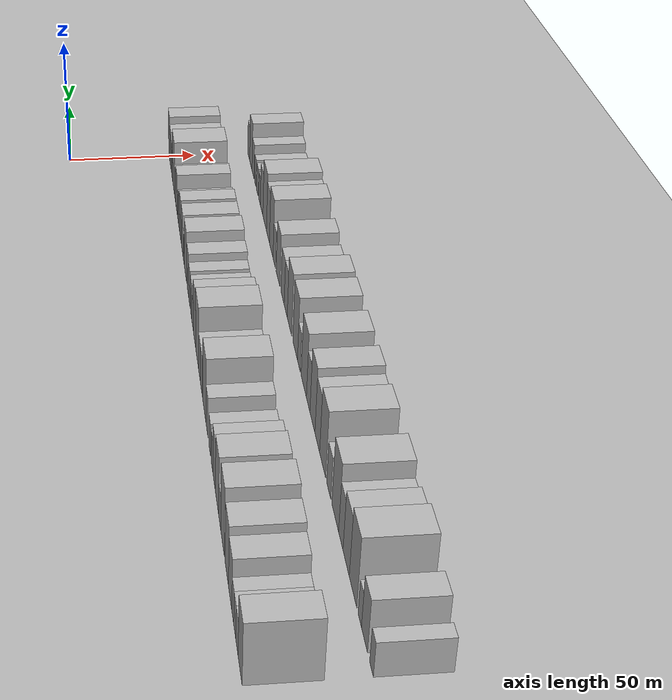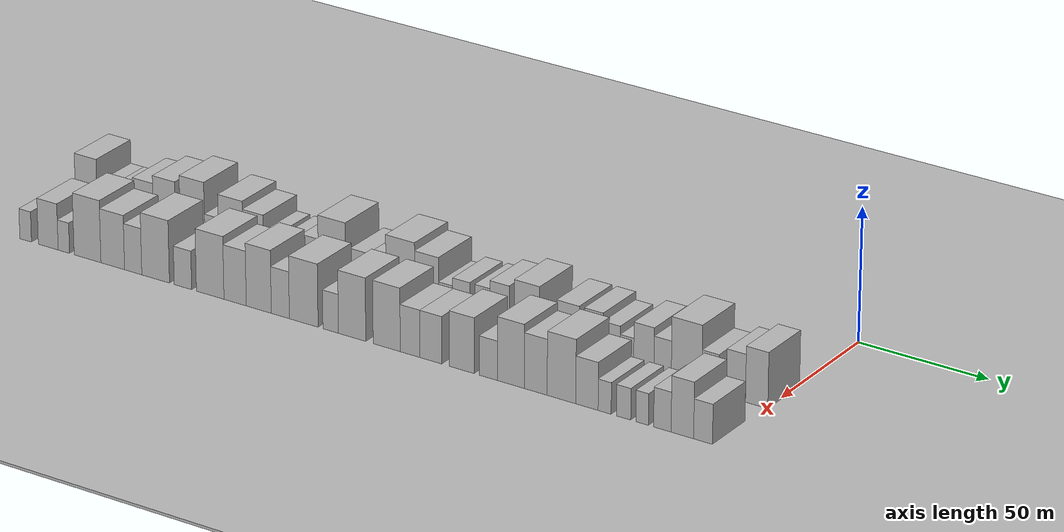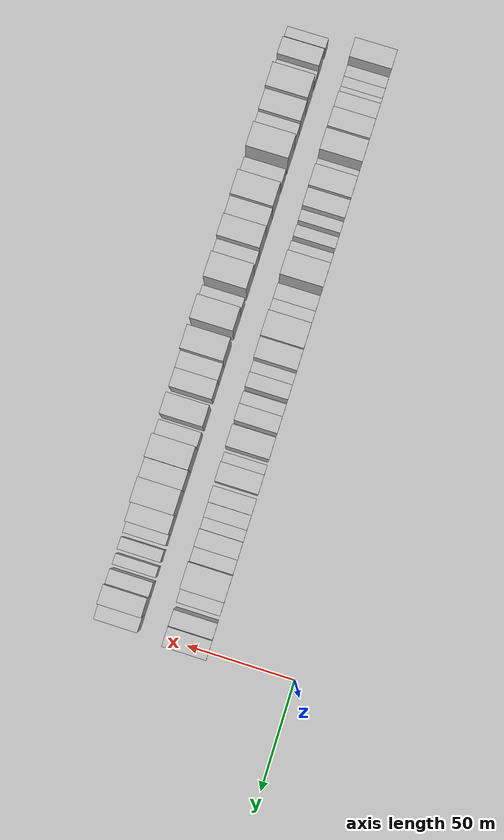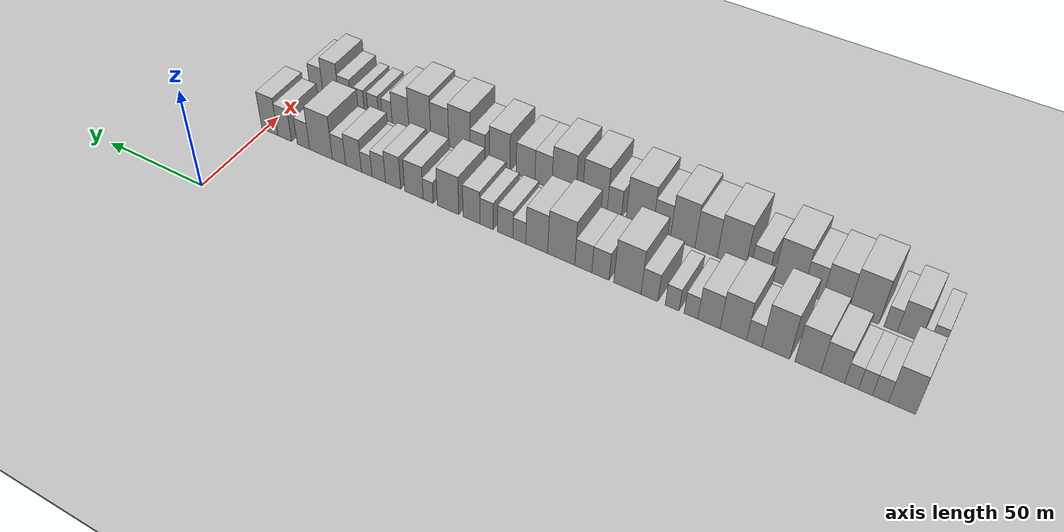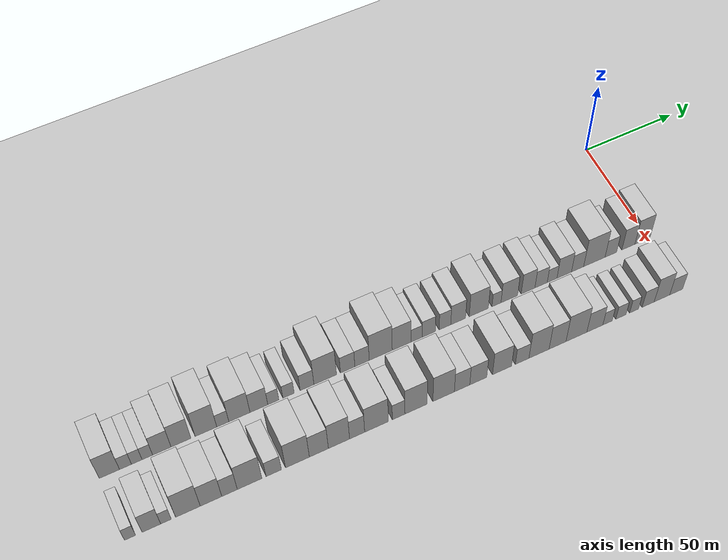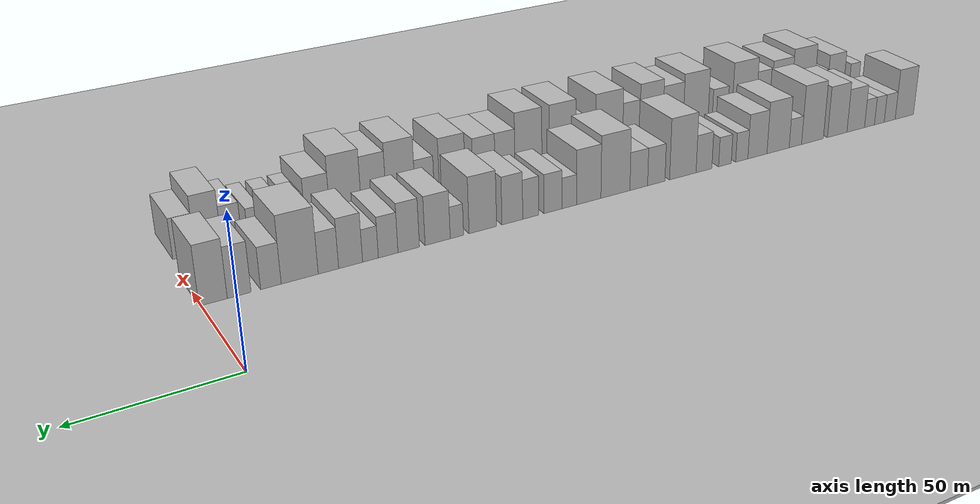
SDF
<sdf version="1.6">
 <world name="default">
  <include><name>ground_plane_1</name><uri>model://HANNAS_ground_plane</uri></include>
  <include>
   <name>ground_plane_2</name>
   <uri>model://HANNAS_ground_plane</uri>
   <pose>100 0 0  0 0 0</pose>
  </include>
  <model name="building_1">
   <static>1</static>
   <pose>50.0000 -279.2305 0 0.000000 0.000000 0.000000</pose>
   <link name="link">
    <pose>0 0 10.50 0 0 0</pose>
    <collision name="collision"><geometry><box><size>20.0000 9.5390 21.0000</size></box></geometry></collision>
    <visual name="visual">
     <cast_shadows>0</cast_shadows>
     <geometry><box><size>20.0000 9.5390 21.0000</size></box></geometry>
     <material>
      <script>
       <uri>model://HANNAS_wall/materials/scripts</uri>
       <uri>model://HANNAS_wall/materials/textures</uri>
       <name>vrc/HANNAS_wall</name>
      </script>
     </material>
    </visual>
   </link>
  </model>
  <model name="building_2">
   <static>1</static>
   <pose>50.0000 -271.6400 0 0.000000 0.000000 0.000000</pose>
   <link name="link">
    <pose>0 0 6.00 0 0 0</pose>
    <collision name="collision"><geometry><box><size>20.0000 5.6421 12.0000</size></box></geometry></collision>
    <visual name="visual">
     <cast_shadows>0</cast_shadows>
     <geometry><box><size>20.0000 5.6421 12.0000</size></box></geometry>
     <material>
      <script>
       <uri>model://HANNAS_wall/materials/scripts</uri>
       <uri>model://HANNAS_wall/materials/textures</uri>
       <name>vrc/HANNAS_wall</name>
      </script>
     </material>
    </visual>
   </link>
  </model>
  <model name="building_3">
   <static>1</static>
   <pose>50.0000 -266.3191 0 0.000000 0.000000 0.000000</pose>
   <link name="link">
    <pose>0 0 6.00 0 0 0</pose>
    <collision name="collision"><geometry><box><size>20.0000 4.9997 12.0000</size></box></geometry></collision>
    <visual name="visual">
     <cast_shadows>0</cast_shadows>
     <geometry><box><size>20.0000 4.9997 12.0000</size></box></geometry>
     <material>
      <script>
       <uri>model://HANNAS_wall/materials/scripts</uri>
       <uri>model://HANNAS_wall/materials/textures</uri>
       <name>vrc/HANNAS_wall</name>
      </script>
     </material>
    </visual>
   </link>
  </model>
  <model name="building_4">
   <static>1</static>
   <pose>50.0000 -261.3050 0 0.000000 0.000000 0.000000</pose>
   <link name="link">
    <pose>0 0 6.00 0 0 0</pose>
    <collision name="collision"><geometry><box><size>20.0000 5.0284 12.0000</size></box></geometry></collision>
    <visual name="visual">
     <cast_shadows>0</cast_shadows>
     <geometry><box><size>20.0000 5.0284 12.0000</size></box></geometry>
     <material>
      <script>
       <uri>model://HANNAS_wall/materials/scripts</uri>
       <uri>model://HANNAS_wall/materials/textures</uri>
       <name>vrc/HANNAS_wall</name>
      </script>
     </material>
    </visual>
   </link>
  </model>
  <model name="building_5">
   <static>1</static>
   <pose>50.0000 -254.3919 0 0.000000 0.000000 0.000000</pose>
   <link name="link">
    <pose>0 0 9.00 0 0 0</pose>
    <collision name="collision"><geometry><box><size>20.0000 8.7978 18.0000</size></box></geometry></collision>
    <visual name="visual">
     <cast_shadows>0</cast_shadows>
     <geometry><box><size>20.0000 8.7978 18.0000</size></box></geometry>
     <material>
      <script>
       <uri>model://HANNAS_wall/materials/scripts</uri>
       <uri>model://HANNAS_wall/materials/textures</uri>
       <name>vrc/HANNAS_wall</name>
      </script>
     </material>
    </visual>
   </link>
  </model>
  <model name="building_6">
   <static>1</static>
   <pose>50.0000 -245.1955 0 0.000000 0.000000 0.000000</pose>
   <link name="link">
    <pose>0 0 10.50 0 0 0</pose>
    <collision name="collision"><geometry><box><size>20.0000 9.5949 21.0000</size></box></geometry></collision>
    <visual name="visual">
     <cast_shadows>0</cast_shadows>
     <geometry><box><size>20.0000 9.5949 21.0000</size></box></geometry>
     <material>
      <script>
       <uri>model://HANNAS_wall/materials/scripts</uri>
       <uri>model://HANNAS_wall/materials/textures</uri>
       <name>vrc/HANNAS_wall</name>
      </script>
     </material>
    </visual>
   </link>
  </model>
  <model name="building_7">
   <static>1</static>
   <pose>50.0000 -233.1401 0 0.000000 0.000000 0.000000</pose>
   <link name="link">
    <pose>0 0 12.00 0 0 0</pose>
    <collision name="collision"><geometry><box><size>20.0000 10.5159 24.0000</size></box></geometry></collision>
    <visual name="visual">
     <cast_shadows>0</cast_shadows>
     <geometry><box><size>20.0000 10.5159 24.0000</size></box></geometry>
     <material>
      <script>
       <uri>model://HANNAS_wall/materials/scripts</uri>
       <uri>model://HANNAS_wall/materials/textures</uri>
       <name>vrc/HANNAS_wall</name>
      </script>
     </material>
    </visual>
   </link>
  </model>
  <model name="building_8">
   <static>1</static>
   <pose>50.0000 -224.9332 0 0.000000 0.000000 0.000000</pose>
   <link name="link">
    <pose>0 0 6.00 0 0 0</pose>
    <collision name="collision"><geometry><box><size>20.0000 5.8978 12.0000</size></box></geometry></collision>
    <visual name="visual">
     <cast_shadows>0</cast_shadows>
     <geometry><box><size>20.0000 5.8978 12.0000</size></box></geometry>
     <material>
      <script>
       <uri>model://HANNAS_wall/materials/scripts</uri>
       <uri>model://HANNAS_wall/materials/textures</uri>
       <name>vrc/HANNAS_wall</name>
      </script>
     </material>
    </visual>
   </link>
  </model>
  <model name="building_9">
   <static>1</static>
   <pose>50.0000 -216.7880 0 0.000000 0.000000 0.000000</pose>
   <link name="link">
    <pose>0 0 10.50 0 0 0</pose>
    <collision name="collision"><geometry><box><size>20.0000 10.3926 21.0000</size></box></geometry></collision>
    <visual name="visual">
     <cast_shadows>0</cast_shadows>
     <geometry><box><size>20.0000 10.3926 21.0000</size></box></geometry>
     <material>
      <script>
       <uri>model://HANNAS_wall/materials/scripts</uri>
       <uri>model://HANNAS_wall/materials/textures</uri>
       <name>vrc/HANNAS_wall</name>
      </script>
     </material>
    </visual>
   </link>
  </model>
  <model name="building_10">
   <static>1</static>
   <pose>50.0000 -207.1930 0 0.000000 0.000000 0.000000</pose>
   <link name="link">
    <pose>0 0 9.00 0 0 0</pose>
    <collision name="collision"><geometry><box><size>20.0000 8.7975 18.0000</size></box></geometry></collision>
    <visual name="visual">
     <cast_shadows>0</cast_shadows>
     <geometry><box><size>20.0000 8.7975 18.0000</size></box></geometry>
     <material>
      <script>
       <uri>model://HANNAS_wall/materials/scripts</uri>
       <uri>model://HANNAS_wall/materials/textures</uri>
       <name>vrc/HANNAS_wall</name>
      </script>
     </material>
    </visual>
   </link>
  </model>
  <model name="building_11">
   <static>1</static>
   <pose>50.0000 -200.0392 0 0.000000 0.000000 0.000000</pose>
   <link name="link">
    <pose>0 0 6.00 0 0 0</pose>
    <collision name="collision"><geometry><box><size>20.0000 5.5100 12.0000</size></box></geometry></collision>
    <visual name="visual">
     <cast_shadows>0</cast_shadows>
     <geometry><box><size>20.0000 5.5100 12.0000</size></box></geometry>
     <material>
      <script>
       <uri>model://HANNAS_wall/materials/scripts</uri>
       <uri>model://HANNAS_wall/materials/textures</uri>
       <name>vrc/HANNAS_wall</name>
      </script>
     </material>
    </visual>
   </link>
  </model>
  <model name="building_12">
   <static>1</static>
   <pose>50.0000 -192.4610 0 0.000000 0.000000 0.000000</pose>
   <link name="link">
    <pose>0 0 6.00 0 0 0</pose>
    <collision name="collision"><geometry><box><size>20.0000 5.6464 12.0000</size></box></geometry></collision>
    <visual name="visual">
     <cast_shadows>0</cast_shadows>
     <geometry><box><size>20.0000 5.6464 12.0000</size></box></geometry>
     <material>
      <script>
       <uri>model://HANNAS_wall/materials/scripts</uri>
       <uri>model://HANNAS_wall/materials/textures</uri>
       <name>vrc/HANNAS_wall</name>
      </script>
     </material>
    </visual>
   </link>
  </model>
  <model name="building_13">
   <static>1</static>
   <pose>50.0000 -183.1649 0 0.000000 0.000000 0.000000</pose>
   <link name="link">
    <pose>0 0 7.50 0 0 0</pose>
    <collision name="collision"><geometry><box><size>20.0000 6.9459 15.0000</size></box></geometry></collision>
    <visual name="visual">
     <cast_shadows>0</cast_shadows>
     <geometry><box><size>20.0000 6.9459 15.0000</size></box></geometry>
     <material>
      <script>
       <uri>model://HANNAS_wall/materials/scripts</uri>
       <uri>model://HANNAS_wall/materials/textures</uri>
       <name>vrc/HANNAS_wall</name>
      </script>
     </material>
    </visual>
   </link>
  </model>
  <model name="building_14">
   <static>1</static>
   <pose>50.0000 -173.9697 0 0.000000 0.000000 0.000000</pose>
   <link name="link">
    <pose>0 0 12.00 0 0 0</pose>
    <collision name="collision"><geometry><box><size>20.0000 11.4444 24.0000</size></box></geometry></collision>
    <visual name="visual">
     <cast_shadows>0</cast_shadows>
     <geometry><box><size>20.0000 11.4444 24.0000</size></box></geometry>
     <material>
      <script>
       <uri>model://HANNAS_wall/materials/scripts</uri>
       <uri>model://HANNAS_wall/materials/textures</uri>
       <name>vrc/HANNAS_wall</name>
      </script>
     </material>
    </visual>
   </link>
  </model>
  <model name="building_15">
   <static>1</static>
   <pose>50.0000 -162.5732 0 0.000000 0.000000 0.000000</pose>
   <link name="link">
    <pose>0 0 7.50 0 0 0</pose>
    <collision name="collision"><geometry><box><size>20.0000 7.3485 15.0000</size></box></geometry></collision>
    <visual name="visual">
     <cast_shadows>0</cast_shadows>
     <geometry><box><size>20.0000 7.3485 15.0000</size></box></geometry>
     <material>
      <script>
       <uri>model://HANNAS_wall/materials/scripts</uri>
       <uri>model://HANNAS_wall/materials/textures</uri>
       <name>vrc/HANNAS_wall</name>
      </script>
     </material>
    </visual>
   </link>
  </model>
  <model name="building_16">
   <static>1</static>
   <pose>50.0000 -155.2108 0 0.000000 0.000000 0.000000</pose>
   <link name="link">
    <pose>0 0 7.50 0 0 0</pose>
    <collision name="collision"><geometry><box><size>20.0000 7.3764 15.0000</size></box></geometry></collision>
    <visual name="visual">
     <cast_shadows>0</cast_shadows>
     <geometry><box><size>20.0000 7.3764 15.0000</size></box></geometry>
     <material>
      <script>
       <uri>model://HANNAS_wall/materials/scripts</uri>
       <uri>model://HANNAS_wall/materials/textures</uri>
       <name>vrc/HANNAS_wall</name>
      </script>
     </material>
    </visual>
   </link>
  </model>
  <model name="building_17">
   <static>1</static>
   <pose>50.0000 -145.5804 0 0.000000 0.000000 0.000000</pose>
   <link name="link">
    <pose>0 0 12.00 0 0 0</pose>
    <collision name="collision"><geometry><box><size>20.0000 11.8843 24.0000</size></box></geometry></collision>
    <visual name="visual">
     <cast_shadows>0</cast_shadows>
     <geometry><box><size>20.0000 11.8843 24.0000</size></box></geometry>
     <material>
      <script>
       <uri>model://HANNAS_wall/materials/scripts</uri>
       <uri>model://HANNAS_wall/materials/textures</uri>
       <name>vrc/HANNAS_wall</name>
      </script>
     </material>
    </visual>
   </link>
  </model>
  <model name="building_18">
   <static>1</static>
   <pose>50.0000 -134.7544 0 0.000000 0.000000 0.000000</pose>
   <link name="link">
    <pose>0 0 10.50 0 0 0</pose>
    <collision name="collision"><geometry><box><size>20.0000 9.7678 21.0000</size></box></geometry></collision>
    <visual name="visual">
     <cast_shadows>0</cast_shadows>
     <geometry><box><size>20.0000 9.7678 21.0000</size></box></geometry>
     <material>
      <script>
       <uri>model://HANNAS_wall/materials/scripts</uri>
       <uri>model://HANNAS_wall/materials/textures</uri>
       <name>vrc/HANNAS_wall</name>
      </script>
     </material>
    </visual>
   </link>
  </model>
  <model name="building_19">
   <static>1</static>
   <pose>50.0000 -126.9675 0 0.000000 0.000000 0.000000</pose>
   <link name="link">
    <pose>0 0 6.00 0 0 0</pose>
    <collision name="collision"><geometry><box><size>20.0000 5.8060 12.0000</size></box></geometry></collision>
    <visual name="visual">
     <cast_shadows>0</cast_shadows>
     <geometry><box><size>20.0000 5.8060 12.0000</size></box></geometry>
     <material>
      <script>
       <uri>model://HANNAS_wall/materials/scripts</uri>
       <uri>model://HANNAS_wall/materials/textures</uri>
       <name>vrc/HANNAS_wall</name>
      </script>
     </material>
    </visual>
   </link>
  </model>
  <model name="building_20">
   <static>1</static>
   <pose>50.0000 -120.5750 0 0.000000 0.000000 0.000000</pose>
   <link name="link">
    <pose>0 0 7.50 0 0 0</pose>
    <collision name="collision"><geometry><box><size>20.0000 6.9789 15.0000</size></box></geometry></collision>
    <visual name="visual">
     <cast_shadows>0</cast_shadows>
     <geometry><box><size>20.0000 6.9789 15.0000</size></box></geometry>
     <material>
      <script>
       <uri>model://HANNAS_wall/materials/scripts</uri>
       <uri>model://HANNAS_wall/materials/textures</uri>
       <name>vrc/HANNAS_wall</name>
      </script>
     </material>
    </visual>
   </link>
  </model>
  <model name="building_21">
   <static>1</static>
   <pose>50.0000 -112.0053 0 0.000000 0.000000 0.000000</pose>
   <link name="link">
    <pose>0 0 7.50 0 0 0</pose>
    <collision name="collision"><geometry><box><size>20.0000 6.1606 15.0000</size></box></geometry></collision>
    <visual name="visual">
     <cast_shadows>0</cast_shadows>
     <geometry><box><size>20.0000 6.1606 15.0000</size></box></geometry>
     <material>
      <script>
       <uri>model://HANNAS_wall/materials/scripts</uri>
       <uri>model://HANNAS_wall/materials/textures</uri>
       <name>vrc/HANNAS_wall</name>
      </script>
     </material>
    </visual>
   </link>
  </model>
  <model name="building_22">
   <static>1</static>
   <pose>50.0000 -104.9959 0 0.000000 0.000000 0.000000</pose>
   <link name="link">
    <pose>0 0 9.00 0 0 0</pose>
    <collision name="collision"><geometry><box><size>20.0000 7.8580 18.0000</size></box></geometry></collision>
    <visual name="visual">
     <cast_shadows>0</cast_shadows>
     <geometry><box><size>20.0000 7.8580 18.0000</size></box></geometry>
     <material>
      <script>
       <uri>model://HANNAS_wall/materials/scripts</uri>
       <uri>model://HANNAS_wall/materials/textures</uri>
       <name>vrc/HANNAS_wall</name>
      </script>
     </material>
    </visual>
   </link>
  </model>
  <model name="building_23">
   <static>1</static>
   <pose>50.0000 -93.9681 0 0.000000 0.000000 0.000000</pose>
   <link name="link">
    <pose>0 0 10.50 0 0 0</pose>
    <collision name="collision"><geometry><box><size>20.0000 10.1976 21.0000</size></box></geometry></collision>
    <visual name="visual">
     <cast_shadows>0</cast_shadows>
     <geometry><box><size>20.0000 10.1976 21.0000</size></box></geometry>
     <material>
      <script>
       <uri>model://HANNAS_wall/materials/scripts</uri>
       <uri>model://HANNAS_wall/materials/textures</uri>
       <name>vrc/HANNAS_wall</name>
      </script>
     </material>
    </visual>
   </link>
  </model>
  <model name="building_24">
   <static>1</static>
   <pose>50.0000 -84.4433 0 0.000000 0.000000 0.000000</pose>
   <link name="link">
    <pose>0 0 6.00 0 0 0</pose>
    <collision name="collision"><geometry><box><size>20.0000 4.8520 12.0000</size></box></geometry></collision>
    <visual name="visual">
     <cast_shadows>0</cast_shadows>
     <geometry><box><size>20.0000 4.8520 12.0000</size></box></geometry>
     <material>
      <script>
       <uri>model://HANNAS_wall/materials/scripts</uri>
       <uri>model://HANNAS_wall/materials/textures</uri>
       <name>vrc/HANNAS_wall</name>
      </script>
     </material>
    </visual>
   </link>
  </model>
  <model name="building_25">
   <static>1</static>
   <pose>50.0000 -77.5244 0 0.000000 0.000000 0.000000</pose>
   <link name="link">
    <pose>0 0 9.00 0 0 0</pose>
    <collision name="collision"><geometry><box><size>20.0000 8.9857 18.0000</size></box></geometry></collision>
    <visual name="visual">
     <cast_shadows>0</cast_shadows>
     <geometry><box><size>20.0000 8.9857 18.0000</size></box></geometry>
     <material>
      <script>
       <uri>model://HANNAS_wall/materials/scripts</uri>
       <uri>model://HANNAS_wall/materials/textures</uri>
       <name>vrc/HANNAS_wall</name>
      </script>
     </material>
    </visual>
   </link>
  </model>
  <model name="building_26">
   <static>1</static>
   <pose>50.0000 -67.2787 0 0.000000 0.000000 0.000000</pose>
   <link name="link">
    <pose>0 0 9.00 0 0 0</pose>
    <collision name="collision"><geometry><box><size>20.0000 7.5058 18.0000</size></box></geometry></collision>
    <visual name="visual">
     <cast_shadows>0</cast_shadows>
     <geometry><box><size>20.0000 7.5058 18.0000</size></box></geometry>
     <material>
      <script>
       <uri>model://HANNAS_wall/materials/scripts</uri>
       <uri>model://HANNAS_wall/materials/textures</uri>
       <name>vrc/HANNAS_wall</name>
      </script>
     </material>
    </visual>
   </link>
  </model>
  <model name="building_27">
   <static>1</static>
   <pose>50.0000 -60.1439 0 0.000000 0.000000 0.000000</pose>
   <link name="link">
    <pose>0 0 7.50 0 0 0</pose>
    <collision name="collision"><geometry><box><size>20.0000 6.7638 15.0000</size></box></geometry></collision>
    <visual name="visual">
     <cast_shadows>0</cast_shadows>
     <geometry><box><size>20.0000 6.7638 15.0000</size></box></geometry>
     <material>
      <script>
       <uri>model://HANNAS_wall/materials/scripts</uri>
       <uri>model://HANNAS_wall/materials/textures</uri>
       <name>vrc/HANNAS_wall</name>
      </script>
     </material>
    </visual>
   </link>
  </model>
  <model name="building_28">
   <static>1</static>
   <pose>50.0000 -54.0815 0 0.000000 0.000000 0.000000</pose>
   <link name="link">
    <pose>0 0 6.00 0 0 0</pose>
    <collision name="collision"><geometry><box><size>20.0000 5.3612 12.0000</size></box></geometry></collision>
    <visual name="visual">
     <cast_shadows>0</cast_shadows>
     <geometry><box><size>20.0000 5.3612 12.0000</size></box></geometry>
     <material>
      <script>
       <uri>model://HANNAS_wall/materials/scripts</uri>
       <uri>model://HANNAS_wall/materials/textures</uri>
       <name>vrc/HANNAS_wall</name>
      </script>
     </material>
    </visual>
   </link>
  </model>
  <model name="building_29">
   <static>1</static>
   <pose>50.0000 -47.3801 0 0.000000 0.000000 0.000000</pose>
   <link name="link">
    <pose>0 0 9.00 0 0 0</pose>
    <collision name="collision"><geometry><box><size>20.0000 8.0416 18.0000</size></box></geometry></collision>
    <visual name="visual">
     <cast_shadows>0</cast_shadows>
     <geometry><box><size>20.0000 8.0416 18.0000</size></box></geometry>
     <material>
      <script>
       <uri>model://HANNAS_wall/materials/scripts</uri>
       <uri>model://HANNAS_wall/materials/textures</uri>
       <name>vrc/HANNAS_wall</name>
      </script>
     </material>
    </visual>
   </link>
  </model>
  <model name="building_30">
   <static>1</static>
   <pose>50.0000 -39.9776 0 0.000000 0.000000 0.000000</pose>
   <link name="link">
    <pose>0 0 7.50 0 0 0</pose>
    <collision name="collision"><geometry><box><size>20.0000 6.7633 15.0000</size></box></geometry></collision>
    <visual name="visual">
     <cast_shadows>0</cast_shadows>
     <geometry><box><size>20.0000 6.7633 15.0000</size></box></geometry>
     <material>
      <script>
       <uri>model://HANNAS_wall/materials/scripts</uri>
       <uri>model://HANNAS_wall/materials/textures</uri>
       <name>vrc/HANNAS_wall</name>
      </script>
     </material>
    </visual>
   </link>
  </model>
  <model name="building_31">
   <static>1</static>
   <pose>50.0000 -30.6100 0 0.000000 0.000000 0.000000</pose>
   <link name="link">
    <pose>0 0 12.00 0 0 0</pose>
    <collision name="collision"><geometry><box><size>20.0000 11.9720 24.0000</size></box></geometry></collision>
    <visual name="visual">
     <cast_shadows>0</cast_shadows>
     <geometry><box><size>20.0000 11.9720 24.0000</size></box></geometry>
     <material>
      <script>
       <uri>model://HANNAS_wall/materials/scripts</uri>
       <uri>model://HANNAS_wall/materials/textures</uri>
       <name>vrc/HANNAS_wall</name>
      </script>
     </material>
    </visual>
   </link>
  </model>
  <model name="building_32">
   <static>1</static>
   <pose>50.0000 -21.3559 0 0.000000 0.000000 0.000000</pose>
   <link name="link">
    <pose>0 0 7.50 0 0 0</pose>
    <collision name="collision"><geometry><box><size>20.0000 6.5360 15.0000</size></box></geometry></collision>
    <visual name="visual">
     <cast_shadows>0</cast_shadows>
     <geometry><box><size>20.0000 6.5360 15.0000</size></box></geometry>
     <material>
      <script>
       <uri>model://HANNAS_wall/materials/scripts</uri>
       <uri>model://HANNAS_wall/materials/textures</uri>
       <name>vrc/HANNAS_wall</name>
      </script>
     </material>
    </visual>
   </link>
  </model>
  <model name="building_33">
   <static>1</static>
   <pose>50.0000 -11.3992 0 0.000000 0.000000 0.000000</pose>
   <link name="link">
    <pose>0 0 9.00 0 0 0</pose>
    <collision name="collision"><geometry><box><size>20.0000 7.3775 18.0000</size></box></geometry></collision>
    <visual name="visual">
     <cast_shadows>0</cast_shadows>
     <geometry><box><size>20.0000 7.3775 18.0000</size></box></geometry>
     <material>
      <script>
       <uri>model://HANNAS_wall/materials/scripts</uri>
       <uri>model://HANNAS_wall/materials/textures</uri>
       <name>vrc/HANNAS_wall</name>
      </script>
     </material>
    </visual>
   </link>
  </model>
  <model name="building_34">
   <static>1</static>
   <pose>50.0000 -3.3811 0 0.000000 0.000000 0.000000</pose>
   <link name="link">
    <pose>0 0 10.50 0 0 0</pose>
    <collision name="collision"><geometry><box><size>20.0000 8.6587 21.0000</size></box></geometry></collision>
    <visual name="visual">
     <cast_shadows>0</cast_shadows>
     <geometry><box><size>20.0000 8.6587 21.0000</size></box></geometry>
     <material>
      <script>
       <uri>model://HANNAS_wall/materials/scripts</uri>
       <uri>model://HANNAS_wall/materials/textures</uri>
       <name>vrc/HANNAS_wall</name>
      </script>
     </material>
    </visual>
   </link>
  </model>
  <model name="building_68">
   <static>1</static>
   <pose>82.0000 -281.4630 0 0.000000 0.000000 0.000000</pose>
   <link name="link">
    <pose>0 0 6.00 0 0 0</pose>
    <collision name="collision"><geometry><box><size>20.0000 5.0740 12.0000</size></box></geometry></collision>
    <visual name="visual">
     <cast_shadows>0</cast_shadows>
     <geometry><box><size>20.0000 5.0740 12.0000</size></box></geometry>
     <material>
      <script>
       <uri>model://HANNAS_wall/materials/scripts</uri>
       <uri>model://HANNAS_wall/materials/textures</uri>
       <name>vrc/HANNAS_wall</name>
      </script>
     </material>
    </visual>
   </link>
  </model>
  <model name="building_69">
   <static>1</static>
   <pose>82.0000 -271.6115 0 0.000000 0.000000 0.000000</pose>
   <link name="link">
    <pose>0 0 9.00 0 0 0</pose>
    <collision name="collision"><geometry><box><size>20.0000 8.6290 18.0000</size></box></geometry></collision>
    <visual name="visual">
     <cast_shadows>0</cast_shadows>
     <geometry><box><size>20.0000 8.6290 18.0000</size></box></geometry>
     <material>
      <script>
       <uri>model://HANNAS_wall/materials/scripts</uri>
       <uri>model://HANNAS_wall/materials/textures</uri>
       <name>vrc/HANNAS_wall</name>
      </script>
     </material>
    </visual>
   </link>
  </model>
  <model name="building_70">
   <static>1</static>
   <pose>82.0000 -264.8291 0 0.000000 0.000000 0.000000</pose>
   <link name="link">
    <pose>0 0 6.00 0 0 0</pose>
    <collision name="collision"><geometry><box><size>20.0000 4.9356 12.0000</size></box></geometry></collision>
    <visual name="visual">
     <cast_shadows>0</cast_shadows>
     <geometry><box><size>20.0000 4.9356 12.0000</size></box></geometry>
     <material>
      <script>
       <uri>model://HANNAS_wall/materials/scripts</uri>
       <uri>model://HANNAS_wall/materials/textures</uri>
       <name>vrc/HANNAS_wall</name>
      </script>
     </material>
    </visual>
   </link>
  </model>
  <model name="building_71">
   <static>1</static>
   <pose>82.0000 -254.5737 0 0.000000 0.000000 0.000000</pose>
   <link name="link">
    <pose>0 0 12.00 0 0 0</pose>
    <collision name="collision"><geometry><box><size>20.0000 11.5752 24.0000</size></box></geometry></collision>
    <visual name="visual">
     <cast_shadows>0</cast_shadows>
     <geometry><box><size>20.0000 11.5752 24.0000</size></box></geometry>
     <material>
      <script>
       <uri>model://HANNAS_wall/materials/scripts</uri>
       <uri>model://HANNAS_wall/materials/textures</uri>
       <name>vrc/HANNAS_wall</name>
      </script>
     </material>
    </visual>
   </link>
  </model>
  <model name="building_72">
   <static>1</static>
   <pose>82.0000 -243.7011 0 0.000000 0.000000 0.000000</pose>
   <link name="link">
    <pose>0 0 10.50 0 0 0</pose>
    <collision name="collision"><geometry><box><size>20.0000 10.1700 21.0000</size></box></geometry></collision>
    <visual name="visual">
     <cast_shadows>0</cast_shadows>
     <geometry><box><size>20.0000 10.1700 21.0000</size></box></geometry>
     <material>
      <script>
       <uri>model://HANNAS_wall/materials/scripts</uri>
       <uri>model://HANNAS_wall/materials/textures</uri>
       <name>vrc/HANNAS_wall</name>
      </script>
     </material>
    </visual>
   </link>
  </model>
  <model name="building_73">
   <static>1</static>
   <pose>82.0000 -234.9308 0 0.000000 0.000000 0.000000</pose>
   <link name="link">
    <pose>0 0 9.00 0 0 0</pose>
    <collision name="collision"><geometry><box><size>20.0000 7.3707 18.0000</size></box></geometry></collision>
    <visual name="visual">
     <cast_shadows>0</cast_shadows>
     <geometry><box><size>20.0000 7.3707 18.0000</size></box></geometry>
     <material>
      <script>
       <uri>model://HANNAS_wall/materials/scripts</uri>
       <uri>model://HANNAS_wall/materials/textures</uri>
       <name>vrc/HANNAS_wall</name>
      </script>
     </material>
    </visual>
   </link>
  </model>
  <model name="building_74">
   <static>1</static>
   <pose>82.0000 -225.3502 0 0.000000 0.000000 0.000000</pose>
   <link name="link">
    <pose>0 0 12.00 0 0 0</pose>
    <collision name="collision"><geometry><box><size>20.0000 11.7905 24.0000</size></box></geometry></collision>
    <visual name="visual">
     <cast_shadows>0</cast_shadows>
     <geometry><box><size>20.0000 11.7905 24.0000</size></box></geometry>
     <material>
      <script>
       <uri>model://HANNAS_wall/materials/scripts</uri>
       <uri>model://HANNAS_wall/materials/textures</uri>
       <name>vrc/HANNAS_wall</name>
      </script>
     </material>
    </visual>
   </link>
  </model>
  <model name="building_75">
   <static>1</static>
   <pose>82.0000 -213.7511 0 0.000000 0.000000 0.000000</pose>
   <link name="link">
    <pose>0 0 7.50 0 0 0</pose>
    <collision name="collision"><geometry><box><size>20.0000 7.4077 15.0000</size></box></geometry></collision>
    <visual name="visual">
     <cast_shadows>0</cast_shadows>
     <geometry><box><size>20.0000 7.4077 15.0000</size></box></geometry>
     <material>
      <script>
       <uri>model://HANNAS_wall/materials/scripts</uri>
       <uri>model://HANNAS_wall/materials/textures</uri>
       <name>vrc/HANNAS_wall</name>
      </script>
     </material>
    </visual>
   </link>
  </model>
  <model name="building_76">
   <static>1</static>
   <pose>82.0000 -202.2282 0 0.000000 0.000000 0.000000</pose>
   <link name="link">
    <pose>0 0 12.00 0 0 0</pose>
    <collision name="collision"><geometry><box><size>20.0000 11.6380 24.0000</size></box></geometry></collision>
    <visual name="visual">
     <cast_shadows>0</cast_shadows>
     <geometry><box><size>20.0000 11.6380 24.0000</size></box></geometry>
     <material>
      <script>
       <uri>model://HANNAS_wall/materials/scripts</uri>
       <uri>model://HANNAS_wall/materials/textures</uri>
       <name>vrc/HANNAS_wall</name>
      </script>
     </material>
    </visual>
   </link>
  </model>
  <model name="building_77">
   <static>1</static>
   <pose>82.0000 -191.7383 0 0.000000 0.000000 0.000000</pose>
   <link name="link">
    <pose>0 0 10.50 0 0 0</pose>
    <collision name="collision"><geometry><box><size>20.0000 9.3420 21.0000</size></box></geometry></collision>
    <visual name="visual">
     <cast_shadows>0</cast_shadows>
     <geometry><box><size>20.0000 9.3420 21.0000</size></box></geometry>
     <material>
      <script>
       <uri>model://HANNAS_wall/materials/scripts</uri>
       <uri>model://HANNAS_wall/materials/textures</uri>
       <name>vrc/HANNAS_wall</name>
      </script>
     </material>
    </visual>
   </link>
  </model>
  <model name="building_78">
   <static>1</static>
   <pose>82.0000 -181.8411 0 0.000000 0.000000 0.000000</pose>
   <link name="link">
    <pose>0 0 12.00 0 0 0</pose>
    <collision name="collision"><geometry><box><size>20.0000 10.4523 24.0000</size></box></geometry></collision>
    <visual name="visual">
     <cast_shadows>0</cast_shadows>
     <geometry><box><size>20.0000 10.4523 24.0000</size></box></geometry>
     <material>
      <script>
       <uri>model://HANNAS_wall/materials/scripts</uri>
       <uri>model://HANNAS_wall/materials/textures</uri>
       <name>vrc/HANNAS_wall</name>
      </script>
     </material>
    </visual>
   </link>
  </model>
  <model name="building_79">
   <static>1</static>
   <pose>82.0000 -172.8551 0 0.000000 0.000000 0.000000</pose>
   <link name="link">
    <pose>0 0 9.00 0 0 0</pose>
    <collision name="collision"><geometry><box><size>20.0000 7.5198 18.0000</size></box></geometry></collision>
    <visual name="visual">
     <cast_shadows>0</cast_shadows>
     <geometry><box><size>20.0000 7.5198 18.0000</size></box></geometry>
     <material>
      <script>
       <uri>model://HANNAS_wall/materials/scripts</uri>
       <uri>model://HANNAS_wall/materials/textures</uri>
       <name>vrc/HANNAS_wall</name>
      </script>
     </material>
    </visual>
   </link>
  </model>
  <model name="building_80">
   <static>1</static>
   <pose>82.0000 -163.1510 0 0.000000 0.000000 0.000000</pose>
   <link name="link">
    <pose>0 0 12.00 0 0 0</pose>
    <collision name="collision"><geometry><box><size>20.0000 11.8885 24.0000</size></box></geometry></collision>
    <visual name="visual">
     <cast_shadows>0</cast_shadows>
     <geometry><box><size>20.0000 11.8885 24.0000</size></box></geometry>
     <material>
      <script>
       <uri>model://HANNAS_wall/materials/scripts</uri>
       <uri>model://HANNAS_wall/materials/textures</uri>
       <name>vrc/HANNAS_wall</name>
      </script>
     </material>
    </visual>
   </link>
  </model>
  <model name="building_81">
   <static>1</static>
   <pose>82.0000 -152.0168 0 0.000000 0.000000 0.000000</pose>
   <link name="link">
    <pose>0 0 7.50 0 0 0</pose>
    <collision name="collision"><geometry><box><size>20.0000 6.3798 15.0000</size></box></geometry></collision>
    <visual name="visual">
     <cast_shadows>0</cast_shadows>
     <geometry><box><size>20.0000 6.3798 15.0000</size></box></geometry>
     <material>
      <script>
       <uri>model://HANNAS_wall/materials/scripts</uri>
       <uri>model://HANNAS_wall/materials/textures</uri>
       <name>vrc/HANNAS_wall</name>
      </script>
     </material>
    </visual>
   </link>
  </model>
  <model name="building_82">
   <static>1</static>
   <pose>82.0000 -143.2156 0 0.000000 0.000000 0.000000</pose>
   <link name="link">
    <pose>0 0 12.00 0 0 0</pose>
    <collision name="collision"><geometry><box><size>20.0000 11.2227 24.0000</size></box></geometry></collision>
    <visual name="visual">
     <cast_shadows>0</cast_shadows>
     <geometry><box><size>20.0000 11.2227 24.0000</size></box></geometry>
     <material>
      <script>
       <uri>model://HANNAS_wall/materials/scripts</uri>
       <uri>model://HANNAS_wall/materials/textures</uri>
       <name>vrc/HANNAS_wall</name>
      </script>
     </material>
    </visual>
   </link>
  </model>
  <model name="building_83">
   <static>1</static>
   <pose>82.0000 -129.0832 0 0.000000 0.000000 0.000000</pose>
   <link name="link">
    <pose>0 0 12.00 0 0 0</pose>
    <collision name="collision"><geometry><box><size>20.0000 11.0421 24.0000</size></box></geometry></collision>
    <visual name="visual">
     <cast_shadows>0</cast_shadows>
     <geometry><box><size>20.0000 11.0421 24.0000</size></box></geometry>
     <material>
      <script>
       <uri>model://HANNAS_wall/materials/scripts</uri>
       <uri>model://HANNAS_wall/materials/textures</uri>
       <name>vrc/HANNAS_wall</name>
      </script>
     </material>
    </visual>
   </link>
  </model>
  <model name="building_84">
   <static>1</static>
   <pose>82.0000 -119.5626 0 0.000000 0.000000 0.000000</pose>
   <link name="link">
    <pose>0 0 9.00 0 0 0</pose>
    <collision name="collision"><geometry><box><size>20.0000 7.9991 18.0000</size></box></geometry></collision>
    <visual name="visual">
     <cast_shadows>0</cast_shadows>
     <geometry><box><size>20.0000 7.9991 18.0000</size></box></geometry>
     <material>
      <script>
       <uri>model://HANNAS_wall/materials/scripts</uri>
       <uri>model://HANNAS_wall/materials/textures</uri>
       <name>vrc/HANNAS_wall</name>
      </script>
     </material>
    </visual>
   </link>
  </model>
  <model name="building_85">
   <static>1</static>
   <pose>82.0000 -111.1499 0 0.000000 0.000000 0.000000</pose>
   <link name="link">
    <pose>0 0 9.00 0 0 0</pose>
    <collision name="collision"><geometry><box><size>20.0000 8.8261 18.0000</size></box></geometry></collision>
    <visual name="visual">
     <cast_shadows>0</cast_shadows>
     <geometry><box><size>20.0000 8.8261 18.0000</size></box></geometry>
     <material>
      <script>
       <uri>model://HANNAS_wall/materials/scripts</uri>
       <uri>model://HANNAS_wall/materials/textures</uri>
       <name>vrc/HANNAS_wall</name>
      </script>
     </material>
    </visual>
   </link>
  </model>
  <model name="building_86">
   <static>1</static>
   <pose>82.0000 -98.7314 0 0.000000 0.000000 0.000000</pose>
   <link name="link">
    <pose>0 0 10.50 0 0 0</pose>
    <collision name="collision"><geometry><box><size>20.0000 10.0108 21.0000</size></box></geometry></collision>
    <visual name="visual">
     <cast_shadows>0</cast_shadows>
     <geometry><box><size>20.0000 10.0108 21.0000</size></box></geometry>
     <material>
      <script>
       <uri>model://HANNAS_wall/materials/scripts</uri>
       <uri>model://HANNAS_wall/materials/textures</uri>
       <name>vrc/HANNAS_wall</name>
      </script>
     </material>
    </visual>
   </link>
  </model>
  <model name="building_87">
   <static>1</static>
   <pose>82.0000 -88.1172 0 0.000000 0.000000 0.000000</pose>
   <link name="link">
    <pose>0 0 7.50 0 0 0</pose>
    <collision name="collision"><geometry><box><size>20.0000 7.2176 15.0000</size></box></geometry></collision>
    <visual name="visual">
     <cast_shadows>0</cast_shadows>
     <geometry><box><size>20.0000 7.2176 15.0000</size></box></geometry>
     <material>
      <script>
       <uri>model://HANNAS_wall/materials/scripts</uri>
       <uri>model://HANNAS_wall/materials/textures</uri>
       <name>vrc/HANNAS_wall</name>
      </script>
     </material>
    </visual>
   </link>
  </model>
  <model name="building_88">
   <static>1</static>
   <pose>82.0000 -79.1464 0 0.000000 0.000000 0.000000</pose>
   <link name="link">
    <pose>0 0 12.00 0 0 0</pose>
    <collision name="collision"><geometry><box><size>20.0000 10.7239 24.0000</size></box></geometry></collision>
    <visual name="visual">
     <cast_shadows>0</cast_shadows>
     <geometry><box><size>20.0000 10.7239 24.0000</size></box></geometry>
     <material>
      <script>
       <uri>model://HANNAS_wall/materials/scripts</uri>
       <uri>model://HANNAS_wall/materials/textures</uri>
       <name>vrc/HANNAS_wall</name>
      </script>
     </material>
    </visual>
   </link>
  </model>
  <model name="building_89">
   <static>1</static>
   <pose>82.0000 -69.2446 0 0.000000 0.000000 0.000000</pose>
   <link name="link">
    <pose>0 0 10.50 0 0 0</pose>
    <collision name="collision"><geometry><box><size>20.0000 9.0797 21.0000</size></box></geometry></collision>
    <visual name="visual">
     <cast_shadows>0</cast_shadows>
     <geometry><box><size>20.0000 9.0797 21.0000</size></box></geometry>
     <material>
      <script>
       <uri>model://HANNAS_wall/materials/scripts</uri>
       <uri>model://HANNAS_wall/materials/textures</uri>
       <name>vrc/HANNAS_wall</name>
      </script>
     </material>
    </visual>
   </link>
  </model>
  <model name="building_90">
   <static>1</static>
   <pose>82.0000 -59.0569 0 0.000000 0.000000 0.000000</pose>
   <link name="link">
    <pose>0 0 12.00 0 0 0</pose>
    <collision name="collision"><geometry><box><size>20.0000 11.2959 24.0000</size></box></geometry></collision>
    <visual name="visual">
     <cast_shadows>0</cast_shadows>
     <geometry><box><size>20.0000 11.2959 24.0000</size></box></geometry>
     <material>
      <script>
       <uri>model://HANNAS_wall/materials/scripts</uri>
       <uri>model://HANNAS_wall/materials/textures</uri>
       <name>vrc/HANNAS_wall</name>
      </script>
     </material>
    </visual>
   </link>
  </model>
  <model name="building_91">
   <static>1</static>
   <pose>82.0000 -49.0593 0 0.000000 0.000000 0.000000</pose>
   <link name="link">
    <pose>0 0 9.00 0 0 0</pose>
    <collision name="collision"><geometry><box><size>20.0000 8.6992 18.0000</size></box></geometry></collision>
    <visual name="visual">
     <cast_shadows>0</cast_shadows>
     <geometry><box><size>20.0000 8.6992 18.0000</size></box></geometry>
     <material>
      <script>
       <uri>model://HANNAS_wall/materials/scripts</uri>
       <uri>model://HANNAS_wall/materials/textures</uri>
       <name>vrc/HANNAS_wall</name>
      </script>
     </material>
    </visual>
   </link>
  </model>
  <model name="building_92">
   <static>1</static>
   <pose>82.0000 -42.1549 0 0.000000 0.000000 0.000000</pose>
   <link name="link">
    <pose>0 0 6.00 0 0 0</pose>
    <collision name="collision"><geometry><box><size>20.0000 5.1096 12.0000</size></box></geometry></collision>
    <visual name="visual">
     <cast_shadows>0</cast_shadows>
     <geometry><box><size>20.0000 5.1096 12.0000</size></box></geometry>
     <material>
      <script>
       <uri>model://HANNAS_wall/materials/scripts</uri>
       <uri>model://HANNAS_wall/materials/textures</uri>
       <name>vrc/HANNAS_wall</name>
      </script>
     </material>
    </visual>
   </link>
  </model>
  <model name="building_93">
   <static>1</static>
   <pose>82.0000 -34.7979 0 0.000000 0.000000 0.000000</pose>
   <link name="link">
    <pose>0 0 6.00 0 0 0</pose>
    <collision name="collision"><geometry><box><size>20.0000 5.6045 12.0000</size></box></geometry></collision>
    <visual name="visual">
     <cast_shadows>0</cast_shadows>
     <geometry><box><size>20.0000 5.6045 12.0000</size></box></geometry>
     <material>
      <script>
       <uri>model://HANNAS_wall/materials/scripts</uri>
       <uri>model://HANNAS_wall/materials/textures</uri>
       <name>vrc/HANNAS_wall</name>
      </script>
     </material>
    </visual>
   </link>
  </model>
  <model name="building_94">
   <static>1</static>
   <pose>82.0000 -27.5431 0 0.000000 0.000000 0.000000</pose>
   <link name="link">
    <pose>0 0 6.00 0 0 0</pose>
    <collision name="collision"><geometry><box><size>20.0000 4.9051 12.0000</size></box></geometry></collision>
    <visual name="visual">
     <cast_shadows>0</cast_shadows>
     <geometry><box><size>20.0000 4.9051 12.0000</size></box></geometry>
     <material>
      <script>
       <uri>model://HANNAS_wall/materials/scripts</uri>
       <uri>model://HANNAS_wall/materials/textures</uri>
       <name>vrc/HANNAS_wall</name>
      </script>
     </material>
    </visual>
   </link>
  </model>
  <model name="building_95">
   <static>1</static>
   <pose>82.0000 -19.7306 0 0.000000 0.000000 0.000000</pose>
   <link name="link">
    <pose>0 0 7.50 0 0 0</pose>
    <collision name="collision"><geometry><box><size>20.0000 6.7198 15.0000</size></box></geometry></collision>
    <visual name="visual">
     <cast_shadows>0</cast_shadows>
     <geometry><box><size>20.0000 6.7198 15.0000</size></box></geometry>
     <material>
      <script>
       <uri>model://HANNAS_wall/materials/scripts</uri>
       <uri>model://HANNAS_wall/materials/textures</uri>
       <name>vrc/HANNAS_wall</name>
      </script>
     </material>
    </visual>
   </link>
  </model>
  <model name="building_96">
   <static>1</static>
   <pose>82.0000 -12.0190 0 0.000000 0.000000 0.000000</pose>
   <link name="link">
    <pose>0 0 10.50 0 0 0</pose>
    <collision name="collision"><geometry><box><size>20.0000 8.7036 21.0000</size></box></geometry></collision>
    <visual name="visual">
     <cast_shadows>0</cast_shadows>
     <geometry><box><size>20.0000 8.7036 21.0000</size></box></geometry>
     <material>
      <script>
       <uri>model://HANNAS_wall/materials/scripts</uri>
       <uri>model://HANNAS_wall/materials/textures</uri>
       <name>vrc/HANNAS_wall</name>
      </script>
     </material>
    </visual>
   </link>
  </model>
  <model name="building_97">
   <static>1</static>
   <pose>82.0000 -4.0594 0 0.000000 0.000000 0.000000</pose>
   <link name="link">
    <pose>0 0 7.50 0 0 0</pose>
    <collision name="collision"><geometry><box><size>20.0000 7.2155 15.0000</size></box></geometry></collision>
    <visual name="visual">
     <cast_shadows>0</cast_shadows>
     <geometry><box><size>20.0000 7.2155 15.0000</size></box></geometry>
     <material>
      <script>
       <uri>model://HANNAS_wall/materials/scripts</uri>
       <uri>model://HANNAS_wall/materials/textures</uri>
       <name>vrc/HANNAS_wall</name>
      </script>
     </material>
    </visual>
   </link>
  </model>
 </world>
</sdf>
